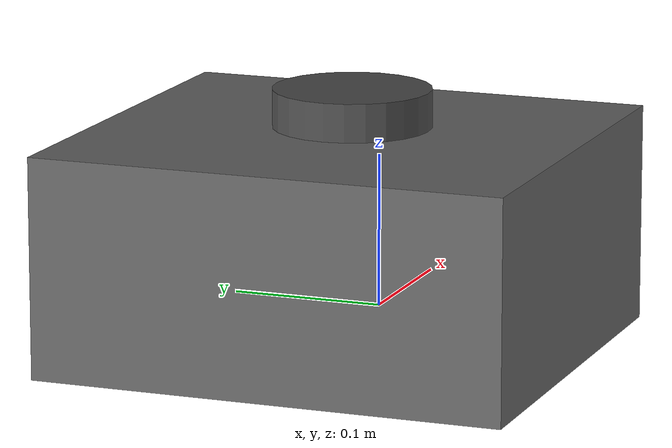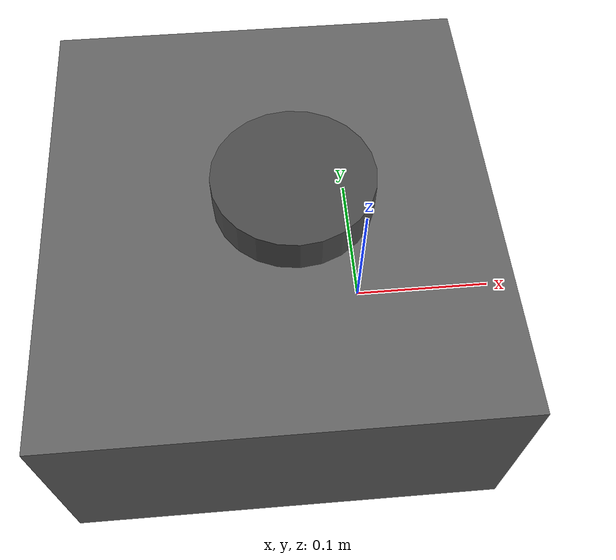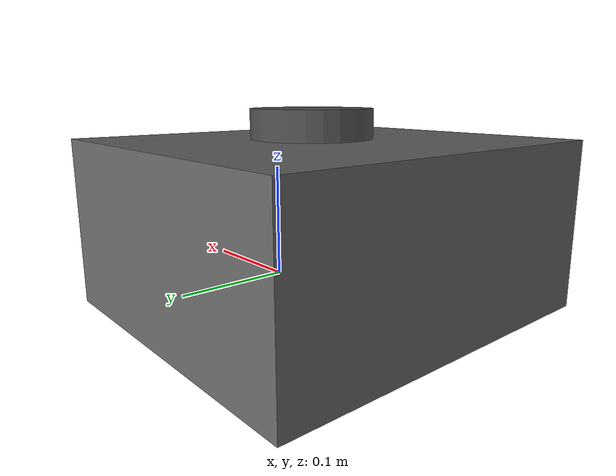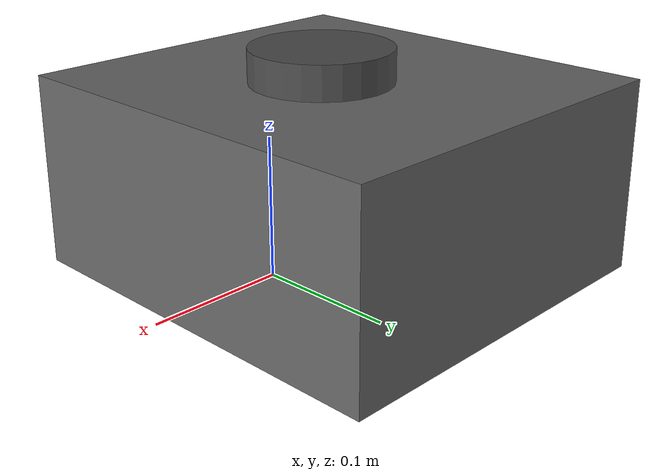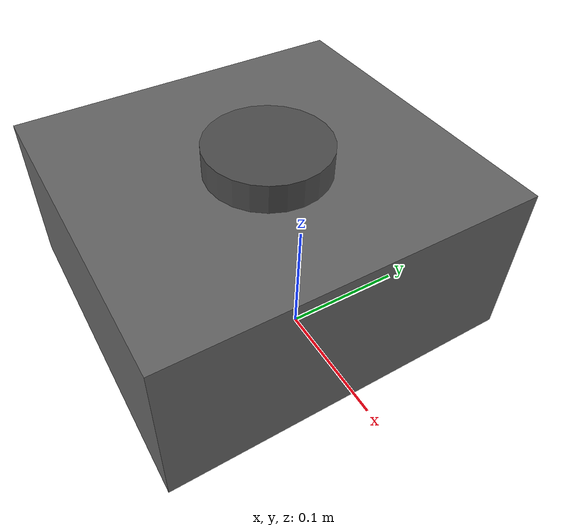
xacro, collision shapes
<?xml version="1.0" ?>
<robot name="turtlebot3_waffle" xmlns:xacro="http://ros.org/wiki/xacro">

  <xacro:arg name="namespace" default=""/>
  <xacro:property name="ns" value="$(arg namespace)"/>

  <!-- ════════════════════════════════════════════════════════════════════
       Material definitions
       ════════════════════════════════════════════════════════════════════ -->
  <material name="black">  <color rgba="0.0 0.0 0.0 1.0"/> </material>
  <material name="dark">   <color rgba="0.3 0.3 0.3 1.0"/> </material>
  <material name="light_black"> <color rgba="0.4 0.4 0.4 1.0"/> </material>
  <material name="green">  <color rgba="0.0 0.8 0.0 1.0"/> </material>
  <material name="grey">   <color rgba="0.5 0.5 0.5 1.0"/> </material>
  <material name="orange"> <color rgba="1.0 0.42 0.04 1.0"/> </material>
  <material name="white">  <color rgba="1.0 1.0 1.0 1.0"/> </material>

  <xacro:property name="base_x"  value="0.281"/>
  <xacro:property name="base_y"  value="0.306"/>
  <xacro:property name="base_z"  value="0.141"/>
  <xacro:property name="wheel_r" value="0.033"/>
  <xacro:property name="wheel_w" value="0.018"/>
  <xacro:property name="wheel_sep" value="0.287"/>
  <xacro:property name="caster_x" value="-0.177"/>

  <!-- ════════════════════════════════════════════════════════════════════
       base_footprint  (the ground-projection frame)
       ════════════════════════════════════════════════════════════════════ -->
  <link name="base_footprint"/>

  <joint name="base_joint" type="fixed">
    <parent link="base_footprint"/>
    <child  link="base_link"/>
    <origin xyz="0 0 0.010" rpy="0 0 0"/>
  </joint>

  <!-- ════════════════════════════════════════════════════════════════════
       base_link  (chassis)
       ════════════════════════════════════════════════════════════════════ -->
  <link name="base_link">
    <visual>
      <origin xyz="-0.064 0 0.0" rpy="0 0 0"/>
      <geometry>
        <mesh filename="package://nav2_minimal_tb3_sim/models/turtlebot3_model/meshes/waffle_base.dae" scale="1.0 1.0 1.0"/>
      </geometry>
      <material name="light_black"/>
    </visual>
    <collision>
      <origin xyz="-0.064 0 0.048" rpy="0 0 0"/>
      <geometry>
        <box size="${base_x} ${base_y} ${base_z}"/>
      </geometry>
    </collision>
    <inertial>
      <origin xyz="0 0 0" rpy="0 0 0"/>
      <mass value="1.3729096"/>
      <inertia ixx="0.0122" ixy="0" ixz="0" iyy="0.0122" iyz="0" izz="0.0171"/>
    </inertial>
  </link>

  <!-- ════════════════════════════════════════════════════════════════════
       Left wheel
       ════════════════════════════════════════════════════════════════════ -->
  <joint name="wheel_left_joint" type="continuous">
    <parent link="base_link"/>
    <child  link="wheel_left_link"/>
    <origin xyz="0.0 ${wheel_sep/2} 0.023" rpy="-1.5708 0 0"/>
    <axis xyz="0 0 1"/>
  </joint>
  <link name="wheel_left_link">
    <visual>
      <origin xyz="0 0 0" rpy="1.5708 0 0"/>
      <geometry>
        <mesh filename="package://nav2_minimal_tb3_sim/models/turtlebot3_model/meshes/tire.dae" scale="1.0 1.0 1.0"/>
      </geometry>
      <material name="dark"/>
    </visual>
    <collision>
      <origin xyz="0 0 0" rpy="0 0 0"/>
      <geometry><cylinder radius="${wheel_r}" length="${wheel_w}"/></geometry>
    </collision>
    <inertial>
      <origin xyz="0 0 0"/>
      <mass value="0.1"/>
      <inertia ixx="0.001" ixy="0" ixz="0" iyy="0.001" iyz="0" izz="0.001"/>
    </inertial>
  </link>

  <!-- ════════════════════════════════════════════════════════════════════
       Right wheel
       ════════════════════════════════════════════════════════════════════ -->
  <joint name="wheel_right_joint" type="continuous">
    <parent link="base_link"/>
    <child  link="wheel_right_link"/>
    <origin xyz="0.0 -${wheel_sep/2} 0.023" rpy="-1.5708 0 0"/>
    <axis xyz="0 0 1"/>
  </joint>
  <link name="wheel_right_link">
    <visual>
      <origin xyz="0 0 0" rpy="1.5708 0 0"/>
      <geometry>
        <mesh filename="package://nav2_minimal_tb3_sim/models/turtlebot3_model/meshes/tire.dae" scale="1.0 1.0 1.0"/>
      </geometry>
      <material name="dark"/>
    </visual>
    <collision>
      <origin xyz="0 0 0" rpy="0 0 0"/>
      <geometry><cylinder radius="${wheel_r}" length="${wheel_w}"/></geometry>
    </collision>
    <inertial>
      <origin xyz="0 0 0"/>
      <mass value="0.1"/>
      <inertia ixx="0.001" ixy="0" ixz="0" iyy="0.001" iyz="0" izz="0.001"/>
    </inertial>
  </link>

  <!-- ════════════════════════════════════════════════════════════════════
       Caster (ball) — passive support
       ════════════════════════════════════════════════════════════════════ -->
  <joint name="caster_back_right_joint" type="fixed">
    <parent link="base_link"/>
    <child  link="caster_back_right_link"/>
    <origin xyz="${caster_x} -0.064 -0.004" rpy="0 0 0"/>
  </joint>
  <link name="caster_back_right_link">
    <collision>
      <origin xyz="0 0 0" rpy="0 0 0"/>
      <geometry><sphere radius="0.005"/></geometry>
    </collision>
    <inertial>
      <origin xyz="0 0 0"/>
      <mass value="0.001"/>
      <inertia ixx="0.00001" ixy="0" ixz="0" iyy="0.00001" iyz="0" izz="0.00001"/>
    </inertial>
  </link>

  <joint name="caster_back_left_joint" type="fixed">
    <parent link="base_link"/>
    <child  link="caster_back_left_link"/>
    <origin xyz="${caster_x} 0.064 -0.004" rpy="0 0 0"/>
  </joint>
  <link name="caster_back_left_link">
    <collision>
      <origin xyz="0 0 0" rpy="0 0 0"/>
      <geometry><sphere radius="0.005"/></geometry>
    </collision>
    <inertial>
      <origin xyz="0 0 0"/>
      <mass value="0.001"/>
      <inertia ixx="0.00001" ixy="0" ixz="0" iyy="0.00001" iyz="0" izz="0.00001"/>
    </inertial>
  </link>

  <!-- ════════════════════════════════════════════════════════════════════
       LDS (Lidar) sensor
       ════════════════════════════════════════════════════════════════════ -->
  <joint name="scan_joint" type="fixed">
    <parent link="base_link"/>
    <child  link="base_scan"/>
    <origin xyz="-0.064 0 0.122" rpy="0 0 0"/>
  </joint>
  <link name="base_scan">
    <visual>
      <origin xyz="0 0 0" rpy="0 0 0"/>
      <geometry>
        <mesh filename="package://nav2_minimal_tb3_sim/models/turtlebot3_model/meshes/lds.dae" scale="1.0 1.0 1.0"/>
      </geometry>
      <material name="dark"/>
    </visual>
    <collision>
      <origin xyz="0.015 0 -0.0065" rpy="0 0 0"/>
      <geometry><cylinder radius="0.0508" length="0.055"/></geometry>
    </collision>
    <inertial>
      <origin xyz="0 0 0"/>
      <mass value="0.114"/>
      <inertia ixx="0.001" ixy="0" ixz="0" iyy="0.001" iyz="0" izz="0.001"/>
    </inertial>
  </link>

  <!-- ════════════════════════════════════════════════════════════════════
       Camera (Intel R200)
       ════════════════════════════════════════════════════════════════════ -->
  <joint name="camera_joint" type="fixed">
    <parent link="base_link"/>
    <child  link="camera_link"/>
    <origin xyz="0.064 -0.065 0.094" rpy="0 0 0"/>
  </joint>
  <link name="camera_link">
    <visual>
      <origin xyz="0 0 0" rpy="1.5708 0 1.5708"/>
      <geometry>
        <mesh filename="package://nav2_minimal_tb3_sim/models/turtlebot3_model/meshes/r200.dae" scale="1.0 1.0 1.0"/>
      </geometry>
    </visual>
    <collision>
      <origin xyz="0 0 0" rpy="0 0 0"/>
      <geometry><box size="0.02 0.12 0.03"/></geometry>
    </collision>
  </link>

  <joint name="camera_rgb_joint" type="fixed">
    <parent link="camera_link"/>
    <child  link="camera_rgb_frame"/>
    <origin xyz="0.005 0.018 0.013" rpy="0 0 0"/>
  </joint>
  <link name="camera_rgb_frame"/>

  <joint name="camera_rgb_optical_joint" type="fixed">
    <parent link="camera_rgb_frame"/>
    <child  link="camera_rgb_optical_frame"/>
    <origin xyz="0 0 0" rpy="-1.5708 0 -1.5708"/>
  </joint>
  <link name="camera_rgb_optical_frame"/>

  <!-- ════════════════════════════════════════════════════════════════════
       IMU sensor frame
       ════════════════════════════════════════════════════════════════════ -->
  <joint name="imu_joint" type="fixed">
    <parent link="base_link"/>
    <child  link="imu_link"/>
    <origin xyz="0.0 0 0.068" rpy="0 0 0"/>
  </joint>
  <link name="imu_link"/>

  <!-- ════════════════════════════════════════════════════════════════════
       GAZEBO HARMONIC (gz-sim 8) PLUGINS
       ════════════════════════════════════════════════════════════════════ -->
  <gazebo>
    <!-- Differential drive controller -->
    <plugin filename="gz-sim-diff-drive-system"
            name="gz::sim::systems::DiffDrive">
      <left_joint>wheel_left_joint</left_joint>
      <right_joint>wheel_right_joint</right_joint>
      <wheel_separation>${wheel_sep}</wheel_separation>
      <wheel_radius>${wheel_r}</wheel_radius>
      <max_linear_acceleration>1.0</max_linear_acceleration>
      <min_linear_acceleration>-1.0</min_linear_acceleration>
      <max_angular_acceleration>2.0</max_angular_acceleration>
      <min_angular_acceleration>-2.0</min_angular_acceleration>
      <max_linear_velocity>0.26</max_linear_velocity>
      <max_angular_velocity>1.82</max_angular_velocity>
      <odom_topic>odom</odom_topic>
      <tf_topic>tf</tf_topic>
      <frame_id>odom</frame_id>
      <child_frame_id>base_footprint</child_frame_id>
      <odom_publish_frequency>30</odom_publish_frequency>
    </plugin>

    <!-- Joint state publisher -->
    <plugin filename="gz-sim-joint-state-publisher-system"
            name="gz::sim::systems::JointStatePublisher">
      <joint_name>wheel_left_joint</joint_name>
      <joint_name>wheel_right_joint</joint_name>
      <topic>joint_states</topic>
    </plugin>
  </gazebo>

  <!-- Lidar sensor -->
  <gazebo reference="base_scan">
    <sensor name="hls_lfcd_lds" type="gpu_lidar">
      <always_on>true</always_on>
      <update_rate>5</update_rate>
      <visualize>true</visualize>
      <topic>scan</topic>
      <gz_frame_id>base_scan</gz_frame_id>
      <lidar>
        <scan>
          <horizontal>
            <samples>360</samples>
            <resolution>1</resolution>
            <min_angle>0</min_angle>
            <max_angle>6.28</max_angle>
          </horizontal>
        </scan>
        <range>
          <min>0.12</min>
          <max>12.0</max>
          <resolution>0.015</resolution>
        </range>
        <noise>
          <type>gaussian</type>
          <mean>0.0</mean>
          <stddev>0.01</stddev>
        </noise>
      </lidar>
    </sensor>
  </gazebo>

  <!-- IMU sensor -->
  <gazebo reference="imu_link">
    <sensor name="tb3_imu" type="imu">
      <always_on>true</always_on>
      <update_rate>200</update_rate>
      <topic>imu</topic>
      <gz_frame_id>imu_link</gz_frame_id>
      <imu>
        <angular_velocity>
          <x><noise type="gaussian"><mean>0</mean><stddev>0.0002</stddev></noise></x>
          <y><noise type="gaussian"><mean>0</mean><stddev>0.0002</stddev></noise></y>
          <z><noise type="gaussian"><mean>0</mean><stddev>0.0002</stddev></noise></z>
        </angular_velocity>
        <linear_acceleration>
          <x><noise type="gaussian"><mean>0</mean><stddev>0.017</stddev></noise></x>
          <y><noise type="gaussian"><mean>0</mean><stddev>0.017</stddev></noise></y>
          <z><noise type="gaussian"><mean>0</mean><stddev>0.017</stddev></noise></z>
        </linear_acceleration>
      </imu>
    </sensor>
  </gazebo>

  <!-- Camera sensor -->
  <gazebo reference="camera_rgb_frame">
    <sensor name="camera" type="camera">
      <always_on>true</always_on>
      <update_rate>15</update_rate>
      <topic>camera/image_raw</topic>
      <gz_frame_id>camera_rgb_optical_frame</gz_frame_id>
      <camera>
        <horizontal_fov>1.085595</horizontal_fov>
        <image>
          <width>640</width>
          <height>480</height>
          <format>R8G8B8</format>
        </image>
        <clip>
          <near>0.03</near>
          <far>100</far>
        </clip>
      </camera>
    </sensor>
  </gazebo>

  <!-- Sensor system plugin (required for all sensors in Harmonic) -->
  <gazebo>
    <plugin filename="gz-sim-sensors-system"
            name="gz::sim::systems::Sensors">
      <render_engine>ogre2</render_engine>
    </plugin>
    <plugin filename="gz-sim-imu-system"
            name="gz::sim::systems::Imu"/>
    <plugin filename="gz-sim-contact-system"
            name="gz::sim::systems::Contact"/>
  </gazebo>

</robot>
